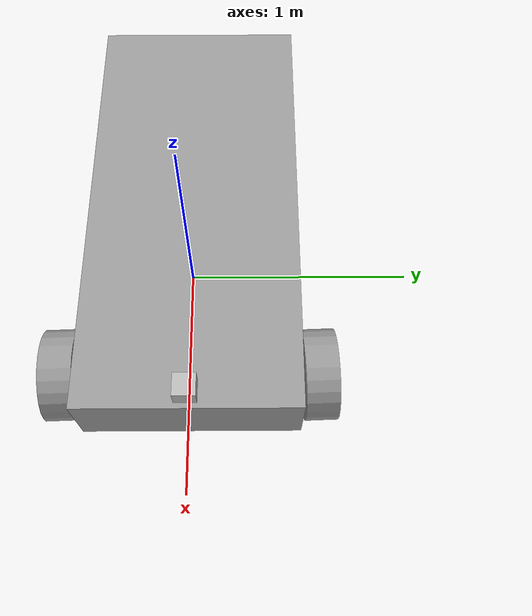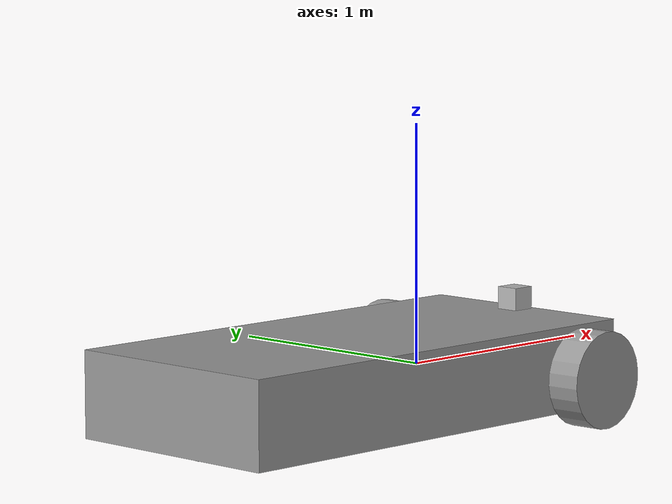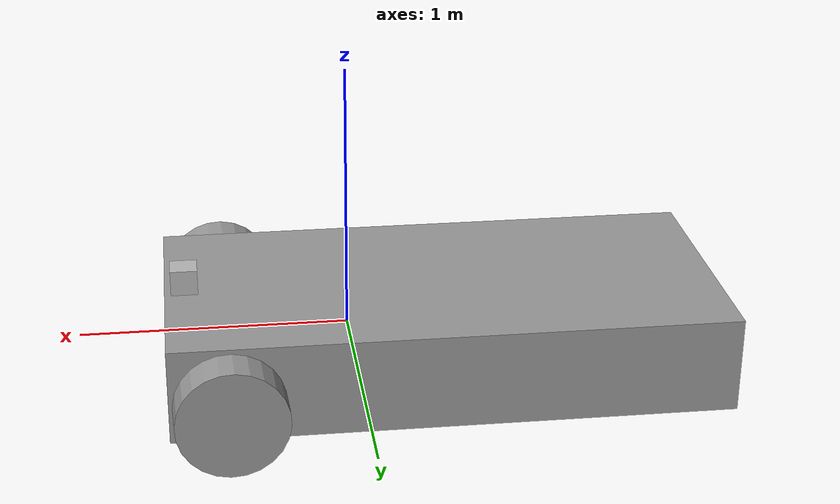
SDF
<?xml version='1.0'?>
<sdf version='1.6'>
  <model name='test1'>
    <link name='link_0'>
      <inertial>
        <mass>0.734117</mass>
        <inertia>
          <ixx>0.0679287</ixx>
          <ixy>0</ixy>
          <ixz>0</ixz>
          <iyy>0.268813</iyy>
          <iyz>0</iyz>
          <izz>0.320989</izz>
        </inertia>
        <pose frame=''>0 0 0 0 -0 0</pose>
      </inertial>
      <pose frame=''>-0.351442 0.001236 -0.014987 0 -0 0</pose>
      <visual name='visual'>
        <pose frame=''>0 0 0 0 -0 0</pose>
        <geometry>
          <box>
            <size>2.06527 0.99077 0.358817</size>
          </box>
        </geometry>
        <material>
          <lighting>1</lighting>
          <script>
            <uri>file://media/materials/scripts/gazebo.material</uri>
            <name>Gazebo/Grey</name>
          </script>
          <shader type='pixel'/>
          <emissive>0 0 0 1</emissive>
        </material>
        <transparency>0</transparency>
        <cast_shadows>1</cast_shadows>
      </visual>
      <collision name='collision'>
        <laser_retro>0</laser_retro>
        <max_contacts>10</max_contacts>
        <pose frame=''>0 0 0 0 -0 0</pose>
        <geometry>
          <box>
            <size>2.06527 0.99077 0.358817</size>
          </box>
        </geometry>
        <surface>
          <friction>
            <ode>
              <mu>1</mu>
              <mu2>1</mu2>
              <fdir1>0 0 0</fdir1>
              <slip1>0</slip1>
              <slip2>0</slip2>
            </ode>
            <torsional>
              <coefficient>1</coefficient>
              <patch_radius>0</patch_radius>
              <surface_radius>0</surface_radius>
              <use_patch_radius>1</use_patch_radius>
              <ode>
                <slip>0</slip>
              </ode>
            </torsional>
          </friction>
          <bounce>
            <restitution_coefficient>0</restitution_coefficient>
            <threshold>1e+06</threshold>
          </bounce>
          <contact>
            <collide_without_contact>0</collide_without_contact>
            <collide_without_contact_bitmask>1</collide_without_contact_bitmask>
            <collide_bitmask>1</collide_bitmask>
            <ode>
              <soft_cfm>0</soft_cfm>
              <soft_erp>0.2</soft_erp>
              <kp>1e+13</kp>
              <kd>1</kd>
              <max_vel>0.01</max_vel>
              <min_depth>0</min_depth>
            </ode>
            <bullet>
              <split_impulse>1</split_impulse>
              <split_impulse_penetration_threshold>-0.01</split_impulse_penetration_threshold>
              <soft_cfm>0</soft_cfm>
              <soft_erp>0.2</soft_erp>
              <kp>1e+13</kp>
              <kd>1</kd>
            </bullet>
          </contact>
        </surface>
      </collision>
    </link>
    <link name='link_1'>
      <inertial>
        <mass>0.0241849</mass>
        <inertia>
          <ixx>0.000293357</ixx>
          <ixy>0</ixy>
          <ixz>0</ixz>
          <iyy>0.000293357</iyy>
          <iyz>0</iyz>
          <izz>0.000500761</izz>
        </inertia>
        <pose frame=''>0 0 0 0 -0 0</pose>
      </inertial>
      <pose frame=''>0.460309 -0.574262 -0.051984 -1.53569 -1.50678 -3.14159</pose>
      <visual name='visual'>
        <pose frame=''>0 0 0 0 -0 0</pose>
        <geometry>
          <cylinder>
            <radius>0.203497</radius>
            <length>0.146027</length>
          </cylinder>
        </geometry>
        <material>
          <lighting>1</lighting>
          <script>
            <uri>file://media/materials/scripts/gazebo.material</uri>
            <name>Gazebo/Grey</name>
          </script>
          <shader type='pixel'/>
          <emissive>0 0 0 1</emissive>
        </material>
        <transparency>0</transparency>
        <cast_shadows>1</cast_shadows>
      </visual>
      <collision name='collision'>
        <laser_retro>0</laser_retro>
        <max_contacts>10</max_contacts>
        <pose frame=''>0 0 0 0 -0 0</pose>
        <geometry>
          <cylinder>
            <radius>0.203497</radius>
            <length>0.146027</length>
          </cylinder>
        </geometry>
        <surface>
          <friction>
            <ode>
              <mu>1</mu>
              <mu2>1</mu2>
              <fdir1>0 0 0</fdir1>
              <slip1>0</slip1>
              <slip2>0</slip2>
            </ode>
            <torsional>
              <coefficient>1</coefficient>
              <patch_radius>0</patch_radius>
              <surface_radius>0</surface_radius>
              <use_patch_radius>1</use_patch_radius>
              <ode>
                <slip>0</slip>
              </ode>
            </torsional>
          </friction>
          <bounce>
            <restitution_coefficient>0</restitution_coefficient>
            <threshold>1e+06</threshold>
          </bounce>
          <contact>
            <collide_without_contact>0</collide_without_contact>
            <collide_without_contact_bitmask>1</collide_without_contact_bitmask>
            <collide_bitmask>1</collide_bitmask>
            <ode>
              <soft_cfm>0</soft_cfm>
              <soft_erp>0.2</soft_erp>
              <kp>1e+13</kp>
              <kd>1</kd>
              <max_vel>0.01</max_vel>
              <min_depth>0</min_depth>
            </ode>
            <bullet>
              <split_impulse>1</split_impulse>
              <split_impulse_penetration_threshold>-0.01</split_impulse_penetration_threshold>
              <soft_cfm>0</soft_cfm>
              <soft_erp>0.2</soft_erp>
              <kp>1e+13</kp>
              <kd>1</kd>
            </bullet>
          </contact>
        </surface>
      </collision>
    </link>
    <link name='link_1_clone'>
      <inertial>
        <mass>0.0241849</mass>
        <inertia>
          <ixx>0.000293357</ixx>
          <ixy>0</ixy>
          <ixz>0</ixz>
          <iyy>0.000293357</iyy>
          <iyz>0</iyz>
          <izz>0.000500761</izz>
        </inertia>
        <pose frame=''>0 0 0 0 -0 0</pose>
      </inertial>
      <pose frame=''>0.462655 0.576731 -0.051833 -1.53569 -1.50678 -3.14159</pose>
      <visual name='visual'>
        <pose frame=''>0 0 0 0 -0 0</pose>
        <geometry>
          <cylinder>
            <radius>0.203497</radius>
            <length>0.146027</length>
          </cylinder>
        </geometry>
        <material>
          <lighting>1</lighting>
          <script>
            <uri>file://media/materials/scripts/gazebo.material</uri>
            <name>Gazebo/Grey</name>
          </script>
          <shader type='pixel'/>
          <emissive>0 0 0 1</emissive>
        </material>
        <transparency>0</transparency>
        <cast_shadows>1</cast_shadows>
      </visual>
      <collision name='collision'>
        <laser_retro>0</laser_retro>
        <max_contacts>10</max_contacts>
        <pose frame=''>0 0 0 0 -0 0</pose>
        <geometry>
          <cylinder>
            <radius>0.203497</radius>
            <length>0.146027</length>
          </cylinder>
        </geometry>
        <surface>
          <friction>
            <ode>
              <mu>1</mu>
              <mu2>1</mu2>
              <fdir1>0 0 0</fdir1>
              <slip1>0</slip1>
              <slip2>0</slip2>
            </ode>
            <torsional>
              <coefficient>1</coefficient>
              <patch_radius>0</patch_radius>
              <surface_radius>0</surface_radius>
              <use_patch_radius>1</use_patch_radius>
              <ode>
                <slip>0</slip>
              </ode>
            </torsional>
          </friction>
          <bounce>
            <restitution_coefficient>0</restitution_coefficient>
            <threshold>1e+06</threshold>
          </bounce>
          <contact>
            <collide_without_contact>0</collide_without_contact>
            <collide_without_contact_bitmask>1</collide_without_contact_bitmask>
            <collide_bitmask>1</collide_bitmask>
            <ode>
              <soft_cfm>0</soft_cfm>
              <soft_erp>0.2</soft_erp>
              <kp>1e+13</kp>
              <kd>1</kd>
              <max_vel>0.01</max_vel>
              <min_depth>0</min_depth>
            </ode>
            <bullet>
              <split_impulse>1</split_impulse>
              <split_impulse_penetration_threshold>-0.01</split_impulse_penetration_threshold>
              <soft_cfm>0</soft_cfm>
              <soft_erp>0.2</soft_erp>
              <kp>1e+13</kp>
              <kd>1</kd>
            </bullet>
          </contact>
        </surface>
      </collision>
    </link>
    <link name='link_2'>
      <inertial>
        <mass>0.0695563</mass>
        <inertia>
          <ixx>0.00117642</ixx>
          <ixy>0</ixy>
          <ixz>0</ixz>
          <iyy>0.00117642</iyy>
          <iyz>0</iyz>
          <izz>0.00117642</izz>
        </inertia>
        <pose frame=''>0 0 0 0 -0 0</pose>
      </inertial>
      <pose frame=''>-1.17845 0.001234 -0.041207 0 -0 0</pose>
      <visual name='visual'>
        <pose frame=''>0 0 0 0 -0 0</pose>
        <geometry>
          <sphere>
            <radius>0.205628</radius>
          </sphere>
        </geometry>
        <material>
          <lighting>1</lighting>
          <script>
            <uri>file://media/materials/scripts/gazebo.material</uri>
            <name>Gazebo/Grey</name>
          </script>
          <shader type='pixel'/>
          <emissive>0 0 0 1</emissive>
        </material>
        <transparency>0</transparency>
        <cast_shadows>1</cast_shadows>
      </visual>
      <collision name='collision'>
        <laser_retro>0</laser_retro>
        <max_contacts>10</max_contacts>
        <pose frame=''>0 0 0 0 -0 0</pose>
        <geometry>
          <sphere>
            <radius>0.205628</radius>
          </sphere>
        </geometry>
        <surface>
          <friction>
            <ode>
              <mu>1</mu>
              <mu2>1</mu2>
              <fdir1>0 0 0</fdir1>
              <slip1>0</slip1>
              <slip2>0</slip2>
            </ode>
            <torsional>
              <coefficient>1</coefficient>
              <patch_radius>0</patch_radius>
              <surface_radius>0</surface_radius>
              <use_patch_radius>1</use_patch_radius>
              <ode>
                <slip>0</slip>
              </ode>
            </torsional>
          </friction>
          <bounce>
            <restitution_coefficient>0</restitution_coefficient>
            <threshold>1e+06</threshold>
          </bounce>
          <contact>
            <collide_without_contact>0</collide_without_contact>
            <collide_without_contact_bitmask>1</collide_without_contact_bitmask>
            <collide_bitmask>1</collide_bitmask>
            <ode>
              <soft_cfm>0</soft_cfm>
              <soft_erp>0.2</soft_erp>
              <kp>1e+13</kp>
              <kd>1</kd>
              <max_vel>0.01</max_vel>
              <min_depth>0</min_depth>
            </ode>
            <bullet>
              <split_impulse>1</split_impulse>
              <split_impulse_penetration_threshold>-0.01</split_impulse_penetration_threshold>
              <soft_cfm>0</soft_cfm>
              <soft_erp>0.2</soft_erp>
              <kp>1e+13</kp>
              <kd>1</kd>
            </bullet>
          </contact>
        </surface>
      </collision>
    </link>
    <model name='depth_camera'>
      <link name='link'>
        <pose frame=''>0 0 0.05 0 -0 0</pose>
        <inertial>
          <mass>0.1</mass>
          <inertia>
            <ixx>0.000166667</ixx>
            <iyy>0.000166667</iyy>
            <izz>0.000166667</izz>
            <ixy>0</ixy>
            <ixz>0</ixz>
            <iyz>0</iyz>
          </inertia>
        </inertial>
        <collision name='collision'>
          <geometry>
            <box>
              <size>0.1 0.1 0.1</size>
            </box>
          </geometry>
        </collision>
        <visual name='visual'>
          <geometry>
            <box>
              <size>0.1 0.1 0.1</size>
            </box>
          </geometry>
        </visual>
        <sensor name='camera' type='depth'>
          <camera name='__default__'>
            <horizontal_fov>1.047</horizontal_fov>
            <image>
              <width>320</width>
              <height>240</height>
            </image>
            <clip>
              <near>0.1</near>
              <far>100</far>
            </clip>
          </camera>
          <always_on>1</always_on>
          <update_rate>30</update_rate>
          <visualize>1</visualize>
        </sensor>
      </link>
      <pose frame=''>0.606919 -0.004931 0.16001 0 -0 0</pose>
    </model>
    <joint name='link_0_JOINT_0' type='revolute'>
      <parent>link_0</parent>
      <child>link_1</child>
      <pose frame=''>0 0 0 0 -0 0</pose>
      <axis>
        <xyz>0 0 1</xyz>
        <use_parent_model_frame>0</use_parent_model_frame>
        <limit>
          <lower>-1.79769e+308</lower>
          <upper>1.79769e+308</upper>
          <effort>-1</effort>
          <velocity>-1</velocity>
        </limit>
        <dynamics>
          <spring_reference>0</spring_reference>
          <spring_stiffness>0</spring_stiffness>
          <damping>0</damping>
          <friction>0</friction>
        </dynamics>
      </axis>
      <physics>
        <ode>
          <limit>
            <cfm>0</cfm>
            <erp>0.2</erp>
          </limit>
          <suspension>
            <cfm>0</cfm>
            <erp>0.2</erp>
          </suspension>
        </ode>
      </physics>
    </joint>
    <joint name='link_0_JOINT_1' type='revolute'>
      <parent>link_0</parent>
      <child>link_1_clone</child>
      <pose frame=''>0 0 0 0 -0 0</pose>
      <axis>
        <xyz>0 0 1</xyz>
        <use_parent_model_frame>0</use_parent_model_frame>
        <limit>
          <lower>-1.79769e+308</lower>
          <upper>1.79769e+308</upper>
          <effort>-1</effort>
          <velocity>-1</velocity>
        </limit>
        <dynamics>
          <spring_reference>0</spring_reference>
          <spring_stiffness>0</spring_stiffness>
          <damping>0</damping>
        </dynamics>
      </axis>
      <physics>
        <ode>
          <limit>
            <cfm>0</cfm>
            <erp>0.2</erp>
          </limit>
          <suspension>
            <cfm>0</cfm>
            <erp>0.2</erp>
          </suspension>
        </ode>
      </physics>
    </joint>
    <joint name='link_0_JOINT_2' type='ball'>
      <parent>link_0</parent>
      <child>link_2</child>
      <pose frame=''>0 0 0 0 -0 0</pose>
      <physics>
        <ode>
          <limit>
            <cfm>0</cfm>
            <erp>0.2</erp>
          </limit>
          <suspension>
            <cfm>0</cfm>
            <erp>0.2</erp>
          </suspension>
        </ode>
      </physics>
    </joint>
    <joint name='link_0_JOINT_5' type='fixed'>
      <parent>link_0</parent>
      <child>depth_camera::link</child>
      <pose frame=''>0 0 0 0 -0 0</pose>
      <physics>
        <ode>
          <limit>
            <cfm>0</cfm>
            <erp>0.2</erp>
          </limit>
          <suspension>
            <cfm>0</cfm>
            <erp>0.2</erp>
          </suspension>
        </ode>
      </physics>
    </joint>
    <static>0</static>
    <allow_auto_disable>1</allow_auto_disable>
    <plugin name='Follower' filename='libFollowerPlugin.so'/>
  </model>
</sdf>
